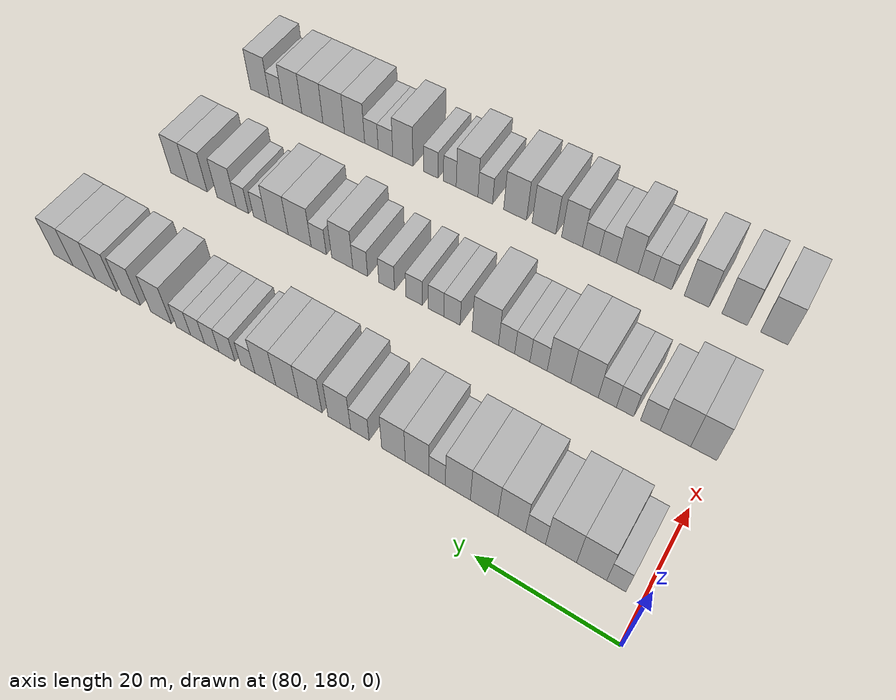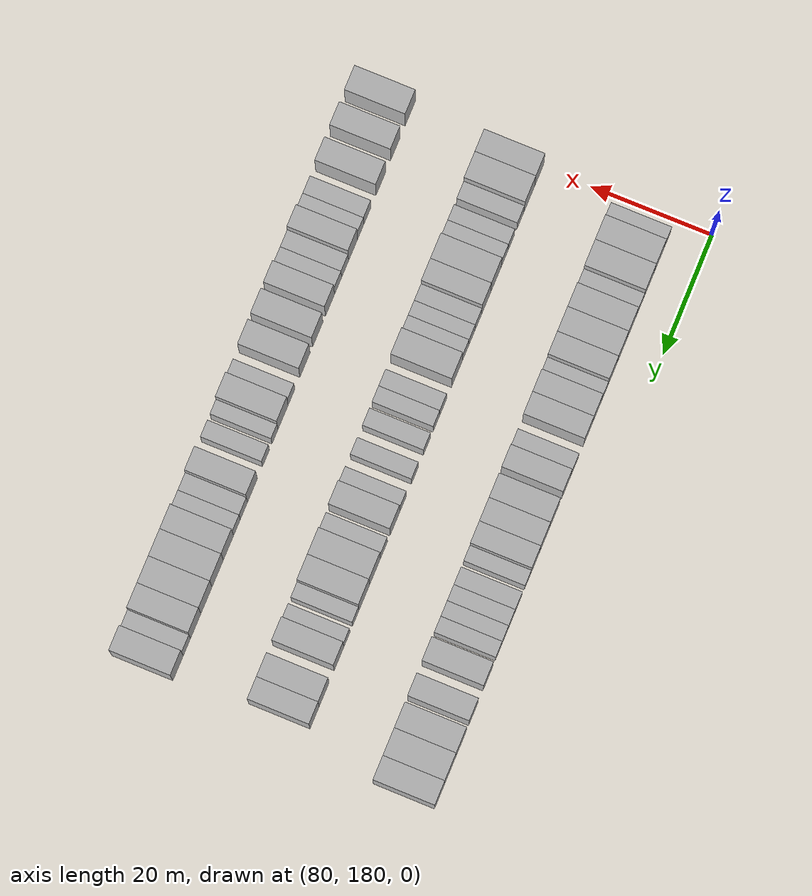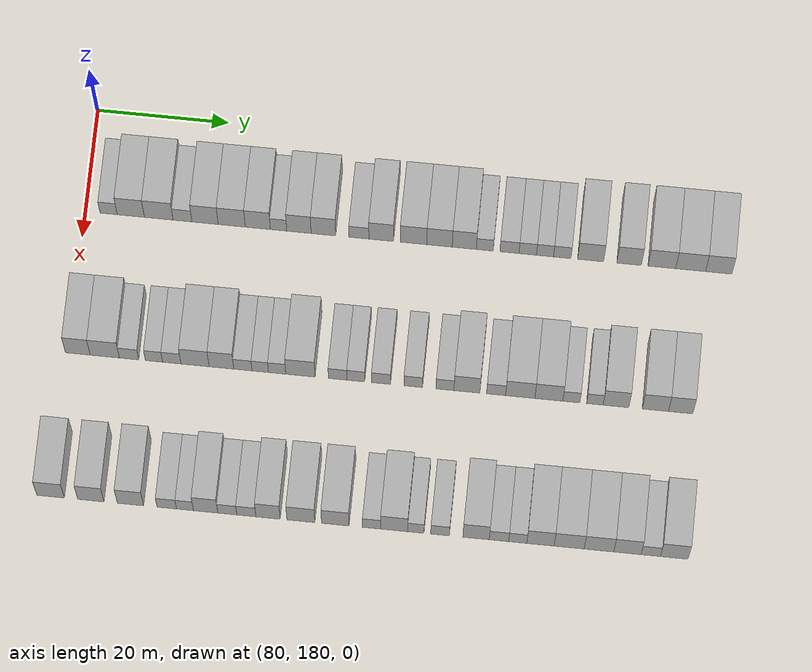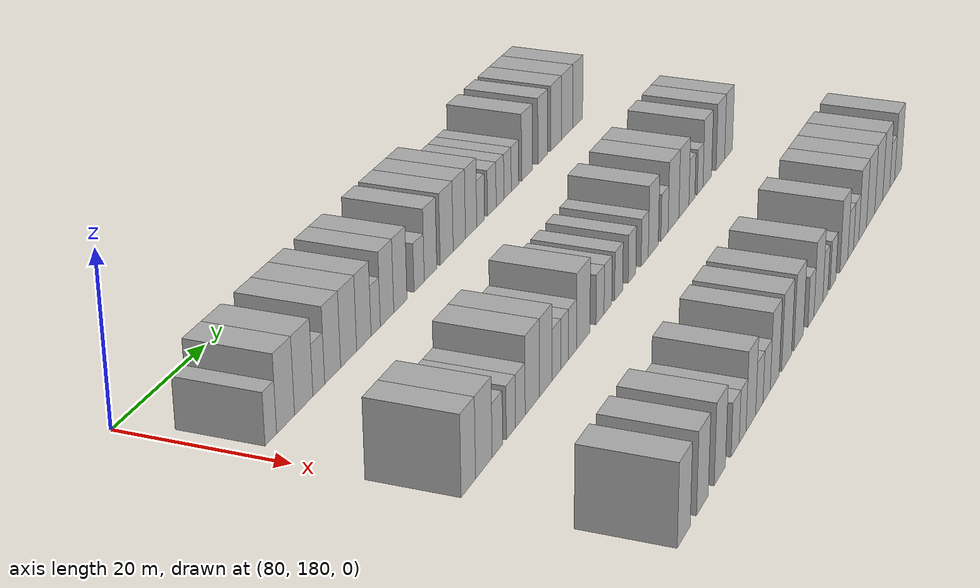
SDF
<sdf version="1.6">
 <world name="default">
  <model name="building_711">
   <static>1</static>
   <pose>91.0000 183.5298 0 0.000000 0.000000 0.000000</pose>
   <link name="link">
    <pose>0 0 3.00 0 0 0</pose>
    <collision name="collision"><geometry><box><size>10.0000 2.5925 6.0000</size></box></geometry></collision>
    <visual name="visual">
     <cast_shadows>0</cast_shadows>
     <geometry><box><size>10.0000 2.5925 6.0000</size></box></geometry>
     <material>
      <script>
       <uri>model://HANNAS_wall/materials/scripts</uri>
       <uri>model://HANNAS_wall/materials/textures</uri>
       <name>vrc/HANNAS_wall</name>
      </script>
     </material>
    </visual>
   </link>
  </model>
  <model name="building_712">
   <static>1</static>
   <pose>91.0000 186.8822 0 0.000000 0.000000 0.000000</pose>
   <link name="link">
    <pose>0 0 4.50 0 0 0</pose>
    <collision name="collision"><geometry><box><size>10.0000 4.1123 9.0000</size></box></geometry></collision>
    <visual name="visual">
     <cast_shadows>0</cast_shadows>
     <geometry><box><size>10.0000 4.1123 9.0000</size></box></geometry>
     <material>
      <script>
       <uri>model://HANNAS_wall/materials/scripts</uri>
       <uri>model://HANNAS_wall/materials/textures</uri>
       <name>vrc/HANNAS_wall</name>
      </script>
     </material>
    </visual>
   </link>
  </model>
  <model name="building_713">
   <static>1</static>
   <pose>91.0000 191.1052 0 0.000000 0.000000 0.000000</pose>
   <link name="link">
    <pose>0 0 4.50 0 0 0</pose>
    <collision name="collision"><geometry><box><size>10.0000 4.3337 9.0000</size></box></geometry></collision>
    <visual name="visual">
     <cast_shadows>0</cast_shadows>
     <geometry><box><size>10.0000 4.3337 9.0000</size></box></geometry>
     <material>
      <script>
       <uri>model://HANNAS_wall/materials/scripts</uri>
       <uri>model://HANNAS_wall/materials/textures</uri>
       <name>vrc/HANNAS_wall</name>
      </script>
     </material>
    </visual>
   </link>
  </model>
  <model name="building_714">
   <static>1</static>
   <pose>91.0000 194.6987 0 0.000000 0.000000 0.000000</pose>
   <link name="link">
    <pose>0 0 3.00 0 0 0</pose>
    <collision name="collision"><geometry><box><size>10.0000 2.8533 6.0000</size></box></geometry></collision>
    <visual name="visual">
     <cast_shadows>0</cast_shadows>
     <geometry><box><size>10.0000 2.8533 6.0000</size></box></geometry>
     <material>
      <script>
       <uri>model://HANNAS_wall/materials/scripts</uri>
       <uri>model://HANNAS_wall/materials/textures</uri>
       <name>vrc/HANNAS_wall</name>
      </script>
     </material>
    </visual>
   </link>
  </model>
  <model name="building_715">
   <static>1</static>
   <pose>91.0000 198.1039 0 0.000000 0.000000 0.000000</pose>
   <link name="link">
    <pose>0 0 4.50 0 0 0</pose>
    <collision name="collision"><geometry><box><size>10.0000 3.9570 9.0000</size></box></geometry></collision>
    <visual name="visual">
     <cast_shadows>0</cast_shadows>
     <geometry><box><size>10.0000 3.9570 9.0000</size></box></geometry>
     <material>
      <script>
       <uri>model://HANNAS_wall/materials/scripts</uri>
       <uri>model://HANNAS_wall/materials/textures</uri>
       <name>vrc/HANNAS_wall</name>
      </script>
     </material>
    </visual>
   </link>
  </model>
  <model name="building_716">
   <static>1</static>
   <pose>91.0000 202.1324 0 0.000000 0.000000 0.000000</pose>
   <link name="link">
    <pose>0 0 4.50 0 0 0</pose>
    <collision name="collision"><geometry><box><size>10.0000 4.1002 9.0000</size></box></geometry></collision>
    <visual name="visual">
     <cast_shadows>0</cast_shadows>
     <geometry><box><size>10.0000 4.1002 9.0000</size></box></geometry>
     <material>
      <script>
       <uri>model://HANNAS_wall/materials/scripts</uri>
       <uri>model://HANNAS_wall/materials/textures</uri>
       <name>vrc/HANNAS_wall</name>
      </script>
     </material>
    </visual>
   </link>
  </model>
  <model name="building_717">
   <static>1</static>
   <pose>91.0000 206.0748 0 0.000000 0.000000 0.000000</pose>
   <link name="link">
    <pose>0 0 4.50 0 0 0</pose>
    <collision name="collision"><geometry><box><size>10.0000 3.7845 9.0000</size></box></geometry></collision>
    <visual name="visual">
     <cast_shadows>0</cast_shadows>
     <geometry><box><size>10.0000 3.7845 9.0000</size></box></geometry>
     <material>
      <script>
       <uri>model://HANNAS_wall/materials/scripts</uri>
       <uri>model://HANNAS_wall/materials/textures</uri>
       <name>vrc/HANNAS_wall</name>
      </script>
     </material>
    </visual>
   </link>
  </model>
  <model name="building_718">
   <static>1</static>
   <pose>91.0000 209.2022 0 0.000000 0.000000 0.000000</pose>
   <link name="link">
    <pose>0 0 3.00 0 0 0</pose>
    <collision name="collision"><geometry><box><size>10.0000 2.4704 6.0000</size></box></geometry></collision>
    <visual name="visual">
     <cast_shadows>0</cast_shadows>
     <geometry><box><size>10.0000 2.4704 6.0000</size></box></geometry>
     <material>
      <script>
       <uri>model://HANNAS_wall/materials/scripts</uri>
       <uri>model://HANNAS_wall/materials/textures</uri>
       <name>vrc/HANNAS_wall</name>
      </script>
     </material>
    </visual>
   </link>
  </model>
  <model name="building_719">
   <static>1</static>
   <pose>91.0000 212.2772 0 0.000000 0.000000 0.000000</pose>
   <link name="link">
    <pose>0 0 4.50 0 0 0</pose>
    <collision name="collision"><geometry><box><size>10.0000 3.6796 9.0000</size></box></geometry></collision>
    <visual name="visual">
     <cast_shadows>0</cast_shadows>
     <geometry><box><size>10.0000 3.6796 9.0000</size></box></geometry>
     <material>
      <script>
       <uri>model://HANNAS_wall/materials/scripts</uri>
       <uri>model://HANNAS_wall/materials/textures</uri>
       <name>vrc/HANNAS_wall</name>
      </script>
     </material>
    </visual>
   </link>
  </model>
  <model name="building_720">
   <static>1</static>
   <pose>91.0000 215.9704 0 0.000000 0.000000 0.000000</pose>
   <link name="link">
    <pose>0 0 4.50 0 0 0</pose>
    <collision name="collision"><geometry><box><size>10.0000 3.7067 9.0000</size></box></geometry></collision>
    <visual name="visual">
     <cast_shadows>0</cast_shadows>
     <geometry><box><size>10.0000 3.7067 9.0000</size></box></geometry>
     <material>
      <script>
       <uri>model://HANNAS_wall/materials/scripts</uri>
       <uri>model://HANNAS_wall/materials/textures</uri>
       <name>vrc/HANNAS_wall</name>
      </script>
     </material>
    </visual>
   </link>
  </model>
  <model name="building_721">
   <static>1</static>
   <pose>91.0000 221.3216 0 0.000000 0.000000 0.000000</pose>
   <link name="link">
    <pose>0 0 3.00 0 0 0</pose>
    <collision name="collision"><geometry><box><size>10.0000 2.9958 6.0000</size></box></geometry></collision>
    <visual name="visual">
     <cast_shadows>0</cast_shadows>
     <geometry><box><size>10.0000 2.9958 6.0000</size></box></geometry>
     <material>
      <script>
       <uri>model://HANNAS_wall/materials/scripts</uri>
       <uri>model://HANNAS_wall/materials/textures</uri>
       <name>vrc/HANNAS_wall</name>
      </script>
     </material>
    </visual>
   </link>
  </model>
  <model name="building_722">
   <static>1</static>
   <pose>91.0000 224.6777 0 0.000000 0.000000 0.000000</pose>
   <link name="link">
    <pose>0 0 4.50 0 0 0</pose>
    <collision name="collision"><geometry><box><size>10.0000 3.7164 9.0000</size></box></geometry></collision>
    <visual name="visual">
     <cast_shadows>0</cast_shadows>
     <geometry><box><size>10.0000 3.7164 9.0000</size></box></geometry>
     <material>
      <script>
       <uri>model://HANNAS_wall/materials/scripts</uri>
       <uri>model://HANNAS_wall/materials/textures</uri>
       <name>vrc/HANNAS_wall</name>
      </script>
     </material>
    </visual>
   </link>
  </model>
  <model name="building_723">
   <static>1</static>
   <pose>91.0000 229.5359 0 0.000000 0.000000 0.000000</pose>
   <link name="link">
    <pose>0 0 4.50 0 0 0</pose>
    <collision name="collision"><geometry><box><size>10.0000 4.0000 9.0000</size></box></geometry></collision>
    <visual name="visual">
     <cast_shadows>0</cast_shadows>
     <geometry><box><size>10.0000 4.0000 9.0000</size></box></geometry>
     <material>
      <script>
       <uri>model://HANNAS_wall/materials/scripts</uri>
       <uri>model://HANNAS_wall/materials/textures</uri>
       <name>vrc/HANNAS_wall</name>
      </script>
     </material>
    </visual>
   </link>
  </model>
  <model name="building_724">
   <static>1</static>
   <pose>91.0000 233.4628 0 0.000000 0.000000 0.000000</pose>
   <link name="link">
    <pose>0 0 4.50 0 0 0</pose>
    <collision name="collision"><geometry><box><size>10.0000 3.8537 9.0000</size></box></geometry></collision>
    <visual name="visual">
     <cast_shadows>0</cast_shadows>
     <geometry><box><size>10.0000 3.8537 9.0000</size></box></geometry>
     <material>
      <script>
       <uri>model://HANNAS_wall/materials/scripts</uri>
       <uri>model://HANNAS_wall/materials/textures</uri>
       <name>vrc/HANNAS_wall</name>
      </script>
     </material>
    </visual>
   </link>
  </model>
  <model name="building_725">
   <static>1</static>
   <pose>91.0000 237.2054 0 0.000000 0.000000 0.000000</pose>
   <link name="link">
    <pose>0 0 4.50 0 0 0</pose>
    <collision name="collision"><geometry><box><size>10.0000 3.6313 9.0000</size></box></geometry></collision>
    <visual name="visual">
     <cast_shadows>0</cast_shadows>
     <geometry><box><size>10.0000 3.6313 9.0000</size></box></geometry>
     <material>
      <script>
       <uri>model://HANNAS_wall/materials/scripts</uri>
       <uri>model://HANNAS_wall/materials/textures</uri>
       <name>vrc/HANNAS_wall</name>
      </script>
     </material>
    </visual>
   </link>
  </model>
  <model name="building_726">
   <static>1</static>
   <pose>91.0000 240.2907 0 0.000000 0.000000 0.000000</pose>
   <link name="link">
    <pose>0 0 3.00 0 0 0</pose>
    <collision name="collision"><geometry><box><size>10.0000 2.5394 6.0000</size></box></geometry></collision>
    <visual name="visual">
     <cast_shadows>0</cast_shadows>
     <geometry><box><size>10.0000 2.5394 6.0000</size></box></geometry>
     <material>
      <script>
       <uri>model://HANNAS_wall/materials/scripts</uri>
       <uri>model://HANNAS_wall/materials/textures</uri>
       <name>vrc/HANNAS_wall</name>
      </script>
     </material>
    </visual>
   </link>
  </model>
  <model name="building_727">
   <static>1</static>
   <pose>91.0000 244.0029 0 0.000000 0.000000 0.000000</pose>
   <link name="link">
    <pose>0 0 3.00 0 0 0</pose>
    <collision name="collision"><geometry><box><size>10.0000 2.8849 6.0000</size></box></geometry></collision>
    <visual name="visual">
     <cast_shadows>0</cast_shadows>
     <geometry><box><size>10.0000 2.8849 6.0000</size></box></geometry>
     <material>
      <script>
       <uri>model://HANNAS_wall/materials/scripts</uri>
       <uri>model://HANNAS_wall/materials/textures</uri>
       <name>vrc/HANNAS_wall</name>
      </script>
     </material>
    </visual>
   </link>
  </model>
  <model name="building_728">
   <static>1</static>
   <pose>91.0000 246.7634 0 0.000000 0.000000 0.000000</pose>
   <link name="link">
    <pose>0 0 3.00 0 0 0</pose>
    <collision name="collision"><geometry><box><size>10.0000 2.6361 6.0000</size></box></geometry></collision>
    <visual name="visual">
     <cast_shadows>0</cast_shadows>
     <geometry><box><size>10.0000 2.6361 6.0000</size></box></geometry>
     <material>
      <script>
       <uri>model://HANNAS_wall/materials/scripts</uri>
       <uri>model://HANNAS_wall/materials/textures</uri>
       <name>vrc/HANNAS_wall</name>
      </script>
     </material>
    </visual>
   </link>
  </model>
  <model name="building_729">
   <static>1</static>
   <pose>91.0000 249.3591 0 0.000000 0.000000 0.000000</pose>
   <link name="link">
    <pose>0 0 3.00 0 0 0</pose>
    <collision name="collision"><geometry><box><size>10.0000 2.5554 6.0000</size></box></geometry></collision>
    <visual name="visual">
     <cast_shadows>0</cast_shadows>
     <geometry><box><size>10.0000 2.5554 6.0000</size></box></geometry>
     <material>
      <script>
       <uri>model://HANNAS_wall/materials/scripts</uri>
       <uri>model://HANNAS_wall/materials/textures</uri>
       <name>vrc/HANNAS_wall</name>
      </script>
     </material>
    </visual>
   </link>
  </model>
  <model name="building_730">
   <static>1</static>
   <pose>91.0000 251.9491 0 0.000000 0.000000 0.000000</pose>
   <link name="link">
    <pose>0 0 3.00 0 0 0</pose>
    <collision name="collision"><geometry><box><size>10.0000 2.6244 6.0000</size></box></geometry></collision>
    <visual name="visual">
     <cast_shadows>0</cast_shadows>
     <geometry><box><size>10.0000 2.6244 6.0000</size></box></geometry>
     <material>
      <script>
       <uri>model://HANNAS_wall/materials/scripts</uri>
       <uri>model://HANNAS_wall/materials/textures</uri>
       <name>vrc/HANNAS_wall</name>
      </script>
     </material>
    </visual>
   </link>
  </model>
  <model name="building_731">
   <static>1</static>
   <pose>91.0000 256.2116 0 0.000000 0.000000 0.000000</pose>
   <link name="link">
    <pose>0 0 4.50 0 0 0</pose>
    <collision name="collision"><geometry><box><size>10.0000 3.9006 9.0000</size></box></geometry></collision>
    <visual name="visual">
     <cast_shadows>0</cast_shadows>
     <geometry><box><size>10.0000 3.9006 9.0000</size></box></geometry>
     <material>
      <script>
       <uri>model://HANNAS_wall/materials/scripts</uri>
       <uri>model://HANNAS_wall/materials/textures</uri>
       <name>vrc/HANNAS_wall</name>
      </script>
     </material>
    </visual>
   </link>
  </model>
  <model name="building_732">
   <static>1</static>
   <pose>91.0000 262.0082 0 0.000000 0.000000 0.000000</pose>
   <link name="link">
    <pose>0 0 4.50 0 0 0</pose>
    <collision name="collision"><geometry><box><size>10.0000 3.6928 9.0000</size></box></geometry></collision>
    <visual name="visual">
     <cast_shadows>0</cast_shadows>
     <geometry><box><size>10.0000 3.6928 9.0000</size></box></geometry>
     <material>
      <script>
       <uri>model://HANNAS_wall/materials/scripts</uri>
       <uri>model://HANNAS_wall/materials/textures</uri>
       <name>vrc/HANNAS_wall</name>
      </script>
     </material>
    </visual>
   </link>
  </model>
  <model name="building_733">
   <static>1</static>
   <pose>91.0000 266.9422 0 0.000000 0.000000 0.000000</pose>
   <link name="link">
    <pose>0 0 4.50 0 0 0</pose>
    <collision name="collision"><geometry><box><size>10.0000 4.1752 9.0000</size></box></geometry></collision>
    <visual name="visual">
     <cast_shadows>0</cast_shadows>
     <geometry><box><size>10.0000 4.1752 9.0000</size></box></geometry>
     <material>
      <script>
       <uri>model://HANNAS_wall/materials/scripts</uri>
       <uri>model://HANNAS_wall/materials/textures</uri>
       <name>vrc/HANNAS_wall</name>
      </script>
     </material>
    </visual>
   </link>
  </model>
  <model name="building_734">
   <static>1</static>
   <pose>91.0000 271.2682 0 0.000000 0.000000 0.000000</pose>
   <link name="link">
    <pose>0 0 4.50 0 0 0</pose>
    <collision name="collision"><geometry><box><size>10.0000 4.4767 9.0000</size></box></geometry></collision>
    <visual name="visual">
     <cast_shadows>0</cast_shadows>
     <geometry><box><size>10.0000 4.4767 9.0000</size></box></geometry>
     <material>
      <script>
       <uri>model://HANNAS_wall/materials/scripts</uri>
       <uri>model://HANNAS_wall/materials/textures</uri>
       <name>vrc/HANNAS_wall</name>
      </script>
     </material>
    </visual>
   </link>
  </model>
  <model name="building_735">
   <static>1</static>
   <pose>91.0000 275.4842 0 0.000000 0.000000 0.000000</pose>
   <link name="link">
    <pose>0 0 4.50 0 0 0</pose>
    <collision name="collision"><geometry><box><size>10.0000 3.9554 9.0000</size></box></geometry></collision>
    <visual name="visual">
     <cast_shadows>0</cast_shadows>
     <geometry><box><size>10.0000 3.9554 9.0000</size></box></geometry>
     <material>
      <script>
       <uri>model://HANNAS_wall/materials/scripts</uri>
       <uri>model://HANNAS_wall/materials/textures</uri>
       <name>vrc/HANNAS_wall</name>
      </script>
     </material>
    </visual>
   </link>
  </model>
  <model name="building_886">
   <static>1</static>
   <pose>113.0000 181.4608 0 0.000000 0.000000 0.000000</pose>
   <link name="link">
    <pose>0 0 4.50 0 0 0</pose>
    <collision name="collision"><geometry><box><size>10.0000 3.7201 9.0000</size></box></geometry></collision>
    <visual name="visual">
     <cast_shadows>0</cast_shadows>
     <geometry><box><size>10.0000 3.7201 9.0000</size></box></geometry>
     <material>
      <script>
       <uri>model://HANNAS_wall/materials/scripts</uri>
       <uri>model://HANNAS_wall/materials/textures</uri>
       <name>vrc/HANNAS_wall</name>
      </script>
     </material>
    </visual>
   </link>
  </model>
  <model name="building_887">
   <static>1</static>
   <pose>113.0000 185.5101 0 0.000000 0.000000 0.000000</pose>
   <link name="link">
    <pose>0 0 4.50 0 0 0</pose>
    <collision name="collision"><geometry><box><size>10.0000 4.3786 9.0000</size></box></geometry></collision>
    <visual name="visual">
     <cast_shadows>0</cast_shadows>
     <geometry><box><size>10.0000 4.3786 9.0000</size></box></geometry>
     <material>
      <script>
       <uri>model://HANNAS_wall/materials/scripts</uri>
       <uri>model://HANNAS_wall/materials/textures</uri>
       <name>vrc/HANNAS_wall</name>
      </script>
     </material>
    </visual>
   </link>
  </model>
  <model name="building_888">
   <static>1</static>
   <pose>113.0000 189.1455 0 0.000000 0.000000 0.000000</pose>
   <link name="link">
    <pose>0 0 3.00 0 0 0</pose>
    <collision name="collision"><geometry><box><size>10.0000 2.8922 6.0000</size></box></geometry></collision>
    <visual name="visual">
     <cast_shadows>0</cast_shadows>
     <geometry><box><size>10.0000 2.8922 6.0000</size></box></geometry>
     <material>
      <script>
       <uri>model://HANNAS_wall/materials/scripts</uri>
       <uri>model://HANNAS_wall/materials/textures</uri>
       <name>vrc/HANNAS_wall</name>
      </script>
     </material>
    </visual>
   </link>
  </model>
  <model name="building_889">
   <static>1</static>
   <pose>113.0000 192.8807 0 0.000000 0.000000 0.000000</pose>
   <link name="link">
    <pose>0 0 3.00 0 0 0</pose>
    <collision name="collision"><geometry><box><size>10.0000 2.5783 6.0000</size></box></geometry></collision>
    <visual name="visual">
     <cast_shadows>0</cast_shadows>
     <geometry><box><size>10.0000 2.5783 6.0000</size></box></geometry>
     <material>
      <script>
       <uri>model://HANNAS_wall/materials/scripts</uri>
       <uri>model://HANNAS_wall/materials/textures</uri>
       <name>vrc/HANNAS_wall</name>
      </script>
     </material>
    </visual>
   </link>
  </model>
  <model name="building_890">
   <static>1</static>
   <pose>113.0000 195.5506 0 0.000000 0.000000 0.000000</pose>
   <link name="link">
    <pose>0 0 3.00 0 0 0</pose>
    <collision name="collision"><geometry><box><size>10.0000 2.7614 6.0000</size></box></geometry></collision>
    <visual name="visual">
     <cast_shadows>0</cast_shadows>
     <geometry><box><size>10.0000 2.7614 6.0000</size></box></geometry>
     <material>
      <script>
       <uri>model://HANNAS_wall/materials/scripts</uri>
       <uri>model://HANNAS_wall/materials/textures</uri>
       <name>vrc/HANNAS_wall</name>
      </script>
     </material>
    </visual>
   </link>
  </model>
  <model name="building_891">
   <static>1</static>
   <pose>113.0000 199.0379 0 0.000000 0.000000 0.000000</pose>
   <link name="link">
    <pose>0 0 4.50 0 0 0</pose>
    <collision name="collision"><geometry><box><size>10.0000 4.2131 9.0000</size></box></geometry></collision>
    <visual name="visual">
     <cast_shadows>0</cast_shadows>
     <geometry><box><size>10.0000 4.2131 9.0000</size></box></geometry>
     <material>
      <script>
       <uri>model://HANNAS_wall/materials/scripts</uri>
       <uri>model://HANNAS_wall/materials/textures</uri>
       <name>vrc/HANNAS_wall</name>
      </script>
     </material>
    </visual>
   </link>
  </model>
  <model name="building_892">
   <static>1</static>
   <pose>113.0000 202.9891 0 0.000000 0.000000 0.000000</pose>
   <link name="link">
    <pose>0 0 4.50 0 0 0</pose>
    <collision name="collision"><geometry><box><size>10.0000 3.6895 9.0000</size></box></geometry></collision>
    <visual name="visual">
     <cast_shadows>0</cast_shadows>
     <geometry><box><size>10.0000 3.6895 9.0000</size></box></geometry>
     <material>
      <script>
       <uri>model://HANNAS_wall/materials/scripts</uri>
       <uri>model://HANNAS_wall/materials/textures</uri>
       <name>vrc/HANNAS_wall</name>
      </script>
     </material>
    </visual>
   </link>
  </model>
  <model name="building_893">
   <static>1</static>
   <pose>113.0000 206.2037 0 0.000000 0.000000 0.000000</pose>
   <link name="link">
    <pose>0 0 3.00 0 0 0</pose>
    <collision name="collision"><geometry><box><size>10.0000 2.7397 6.0000</size></box></geometry></collision>
    <visual name="visual">
     <cast_shadows>0</cast_shadows>
     <geometry><box><size>10.0000 2.7397 6.0000</size></box></geometry>
     <material>
      <script>
       <uri>model://HANNAS_wall/materials/scripts</uri>
       <uri>model://HANNAS_wall/materials/textures</uri>
       <name>vrc/HANNAS_wall</name>
      </script>
     </material>
    </visual>
   </link>
  </model>
  <model name="building_894">
   <static>1</static>
   <pose>113.0000 208.7994 0 0.000000 0.000000 0.000000</pose>
   <link name="link">
    <pose>0 0 3.00 0 0 0</pose>
    <collision name="collision"><geometry><box><size>10.0000 2.4516 6.0000</size></box></geometry></collision>
    <visual name="visual">
     <cast_shadows>0</cast_shadows>
     <geometry><box><size>10.0000 2.4516 6.0000</size></box></geometry>
     <material>
      <script>
       <uri>model://HANNAS_wall/materials/scripts</uri>
       <uri>model://HANNAS_wall/materials/textures</uri>
       <name>vrc/HANNAS_wall</name>
      </script>
     </material>
    </visual>
   </link>
  </model>
  <model name="building_895">
   <static>1</static>
   <pose>113.0000 211.3282 0 0.000000 0.000000 0.000000</pose>
   <link name="link">
    <pose>0 0 3.00 0 0 0</pose>
    <collision name="collision"><geometry><box><size>10.0000 2.6061 6.0000</size></box></geometry></collision>
    <visual name="visual">
     <cast_shadows>0</cast_shadows>
     <geometry><box><size>10.0000 2.6061 6.0000</size></box></geometry>
     <material>
      <script>
       <uri>model://HANNAS_wall/materials/scripts</uri>
       <uri>model://HANNAS_wall/materials/textures</uri>
       <name>vrc/HANNAS_wall</name>
      </script>
     </material>
    </visual>
   </link>
  </model>
  <model name="building_896">
   <static>1</static>
   <pose>113.0000 214.8181 0 0.000000 0.000000 0.000000</pose>
   <link name="link">
    <pose>0 0 4.50 0 0 0</pose>
    <collision name="collision"><geometry><box><size>10.0000 4.3737 9.0000</size></box></geometry></collision>
    <visual name="visual">
     <cast_shadows>0</cast_shadows>
     <geometry><box><size>10.0000 4.3737 9.0000</size></box></geometry>
     <material>
      <script>
       <uri>model://HANNAS_wall/materials/scripts</uri>
       <uri>model://HANNAS_wall/materials/textures</uri>
       <name>vrc/HANNAS_wall</name>
      </script>
     </material>
    </visual>
   </link>
  </model>
  <model name="building_897">
   <static>1</static>
   <pose>113.0000 220.3850 0 0.000000 0.000000 0.000000</pose>
   <link name="link">
    <pose>0 0 3.00 0 0 0</pose>
    <collision name="collision"><geometry><box><size>10.0000 2.7602 6.0000</size></box></geometry></collision>
    <visual name="visual">
     <cast_shadows>0</cast_shadows>
     <geometry><box><size>10.0000 2.7602 6.0000</size></box></geometry>
     <material>
      <script>
       <uri>model://HANNAS_wall/materials/scripts</uri>
       <uri>model://HANNAS_wall/materials/textures</uri>
       <name>vrc/HANNAS_wall</name>
      </script>
     </material>
    </visual>
   </link>
  </model>
  <model name="building_898">
   <static>1</static>
   <pose>113.0000 223.0998 0 0.000000 0.000000 0.000000</pose>
   <link name="link">
    <pose>0 0 3.00 0 0 0</pose>
    <collision name="collision"><geometry><box><size>10.0000 2.6694 6.0000</size></box></geometry></collision>
    <visual name="visual">
     <cast_shadows>0</cast_shadows>
     <geometry><box><size>10.0000 2.6694 6.0000</size></box></geometry>
     <material>
      <script>
       <uri>model://HANNAS_wall/materials/scripts</uri>
       <uri>model://HANNAS_wall/materials/textures</uri>
       <name>vrc/HANNAS_wall</name>
      </script>
     </material>
    </visual>
   </link>
  </model>
  <model name="building_899">
   <static>1</static>
   <pose>113.0000 226.8596 0 0.000000 0.000000 0.000000</pose>
   <link name="link">
    <pose>0 0 3.00 0 0 0</pose>
    <collision name="collision"><geometry><box><size>10.0000 2.8503 6.0000</size></box></geometry></collision>
    <visual name="visual">
     <cast_shadows>0</cast_shadows>
     <geometry><box><size>10.0000 2.8503 6.0000</size></box></geometry>
     <material>
      <script>
       <uri>model://HANNAS_wall/materials/scripts</uri>
       <uri>model://HANNAS_wall/materials/textures</uri>
       <name>vrc/HANNAS_wall</name>
      </script>
     </material>
    </visual>
   </link>
  </model>
  <model name="building_900">
   <static>1</static>
   <pose>113.0000 231.6807 0 0.000000 0.000000 0.000000</pose>
   <link name="link">
    <pose>0 0 3.00 0 0 0</pose>
    <collision name="collision"><geometry><box><size>10.0000 2.7917 6.0000</size></box></geometry></collision>
    <visual name="visual">
     <cast_shadows>0</cast_shadows>
     <geometry><box><size>10.0000 2.7917 6.0000</size></box></geometry>
     <material>
      <script>
       <uri>model://HANNAS_wall/materials/scripts</uri>
       <uri>model://HANNAS_wall/materials/textures</uri>
       <name>vrc/HANNAS_wall</name>
      </script>
     </material>
    </visual>
   </link>
  </model>
  <model name="building_901">
   <static>1</static>
   <pose>113.0000 236.4230 0 0.000000 0.000000 0.000000</pose>
   <link name="link">
    <pose>0 0 3.00 0 0 0</pose>
    <collision name="collision"><geometry><box><size>10.0000 2.6930 6.0000</size></box></geometry></collision>
    <visual name="visual">
     <cast_shadows>0</cast_shadows>
     <geometry><box><size>10.0000 2.6930 6.0000</size></box></geometry>
     <material>
      <script>
       <uri>model://HANNAS_wall/materials/scripts</uri>
       <uri>model://HANNAS_wall/materials/textures</uri>
       <name>vrc/HANNAS_wall</name>
      </script>
     </material>
    </visual>
   </link>
  </model>
  <model name="building_902">
   <static>1</static>
   <pose>113.0000 239.7086 0 0.000000 0.000000 0.000000</pose>
   <link name="link">
    <pose>0 0 4.50 0 0 0</pose>
    <collision name="collision"><geometry><box><size>10.0000 3.8782 9.0000</size></box></geometry></collision>
    <visual name="visual">
     <cast_shadows>0</cast_shadows>
     <geometry><box><size>10.0000 3.8782 9.0000</size></box></geometry>
     <material>
      <script>
       <uri>model://HANNAS_wall/materials/scripts</uri>
       <uri>model://HANNAS_wall/materials/textures</uri>
       <name>vrc/HANNAS_wall</name>
      </script>
     </material>
    </visual>
   </link>
  </model>
  <model name="building_903">
   <static>1</static>
   <pose>113.0000 244.0668 0 0.000000 0.000000 0.000000</pose>
   <link name="link">
    <pose>0 0 3.00 0 0 0</pose>
    <collision name="collision"><geometry><box><size>10.0000 2.8384 6.0000</size></box></geometry></collision>
    <visual name="visual">
     <cast_shadows>0</cast_shadows>
     <geometry><box><size>10.0000 2.8384 6.0000</size></box></geometry>
     <material>
      <script>
       <uri>model://HANNAS_wall/materials/scripts</uri>
       <uri>model://HANNAS_wall/materials/textures</uri>
       <name>vrc/HANNAS_wall</name>
      </script>
     </material>
    </visual>
   </link>
  </model>
  <model name="building_904">
   <static>1</static>
   <pose>113.0000 247.6709 0 0.000000 0.000000 0.000000</pose>
   <link name="link">
    <pose>0 0 4.50 0 0 0</pose>
    <collision name="collision"><geometry><box><size>10.0000 4.3696 9.0000</size></box></geometry></collision>
    <visual name="visual">
     <cast_shadows>0</cast_shadows>
     <geometry><box><size>10.0000 4.3696 9.0000</size></box></geometry>
     <material>
      <script>
       <uri>model://HANNAS_wall/materials/scripts</uri>
       <uri>model://HANNAS_wall/materials/textures</uri>
       <name>vrc/HANNAS_wall</name>
      </script>
     </material>
    </visual>
   </link>
  </model>
  <model name="building_905">
   <static>1</static>
   <pose>113.0000 251.9469 0 0.000000 0.000000 0.000000</pose>
   <link name="link">
    <pose>0 0 4.50 0 0 0</pose>
    <collision name="collision"><geometry><box><size>10.0000 4.1824 9.0000</size></box></geometry></collision>
    <visual name="visual">
     <cast_shadows>0</cast_shadows>
     <geometry><box><size>10.0000 4.1824 9.0000</size></box></geometry>
     <material>
      <script>
       <uri>model://HANNAS_wall/materials/scripts</uri>
       <uri>model://HANNAS_wall/materials/textures</uri>
       <name>vrc/HANNAS_wall</name>
      </script>
     </material>
    </visual>
   </link>
  </model>
  <model name="building_906">
   <static>1</static>
   <pose>113.0000 255.3095 0 0.000000 0.000000 0.000000</pose>
   <link name="link">
    <pose>0 0 3.00 0 0 0</pose>
    <collision name="collision"><geometry><box><size>10.0000 2.5429 6.0000</size></box></geometry></collision>
    <visual name="visual">
     <cast_shadows>0</cast_shadows>
     <geometry><box><size>10.0000 2.5429 6.0000</size></box></geometry>
     <material>
      <script>
       <uri>model://HANNAS_wall/materials/scripts</uri>
       <uri>model://HANNAS_wall/materials/textures</uri>
       <name>vrc/HANNAS_wall</name>
      </script>
     </material>
    </visual>
   </link>
  </model>
  <model name="building_907">
   <static>1</static>
   <pose>113.0000 258.8143 0 0.000000 0.000000 0.000000</pose>
   <link name="link">
    <pose>0 0 3.00 0 0 0</pose>
    <collision name="collision"><geometry><box><size>10.0000 2.4666 6.0000</size></box></geometry></collision>
    <visual name="visual">
     <cast_shadows>0</cast_shadows>
     <geometry><box><size>10.0000 2.4666 6.0000</size></box></geometry>
     <material>
      <script>
       <uri>model://HANNAS_wall/materials/scripts</uri>
       <uri>model://HANNAS_wall/materials/textures</uri>
       <name>vrc/HANNAS_wall</name>
      </script>
     </material>
    </visual>
   </link>
  </model>
  <model name="building_908">
   <static>1</static>
   <pose>113.0000 261.9673 0 0.000000 0.000000 0.000000</pose>
   <link name="link">
    <pose>0 0 4.50 0 0 0</pose>
    <collision name="collision"><geometry><box><size>10.0000 3.8395 9.0000</size></box></geometry></collision>
    <visual name="visual">
     <cast_shadows>0</cast_shadows>
     <geometry><box><size>10.0000 3.8395 9.0000</size></box></geometry>
     <material>
      <script>
       <uri>model://HANNAS_wall/materials/scripts</uri>
       <uri>model://HANNAS_wall/materials/textures</uri>
       <name>vrc/HANNAS_wall</name>
      </script>
     </material>
    </visual>
   </link>
  </model>
  <model name="building_909">
   <static>1</static>
   <pose>113.0000 267.8396 0 0.000000 0.000000 0.000000</pose>
   <link name="link">
    <pose>0 0 4.50 0 0 0</pose>
    <collision name="collision"><geometry><box><size>10.0000 3.9050 9.0000</size></box></geometry></collision>
    <visual name="visual">
     <cast_shadows>0</cast_shadows>
     <geometry><box><size>10.0000 3.9050 9.0000</size></box></geometry>
     <material>
      <script>
       <uri>model://HANNAS_wall/materials/scripts</uri>
       <uri>model://HANNAS_wall/materials/textures</uri>
       <name>vrc/HANNAS_wall</name>
      </script>
     </material>
    </visual>
   </link>
  </model>
  <model name="building_910">
   <static>1</static>
   <pose>113.0000 271.6097 0 0.000000 0.000000 0.000000</pose>
   <link name="link">
    <pose>0 0 4.50 0 0 0</pose>
    <collision name="collision"><geometry><box><size>10.0000 3.6352 9.0000</size></box></geometry></collision>
    <visual name="visual">
     <cast_shadows>0</cast_shadows>
     <geometry><box><size>10.0000 3.6352 9.0000</size></box></geometry>
     <material>
      <script>
       <uri>model://HANNAS_wall/materials/scripts</uri>
       <uri>model://HANNAS_wall/materials/textures</uri>
       <name>vrc/HANNAS_wall</name>
      </script>
     </material>
    </visual>
   </link>
  </model>
  <model name="building_1069">
   <static>1</static>
   <pose>135.0000 179.9943 0 0.000000 0.000000 0.000000</pose>
   <link name="link">
    <pose>0 0 4.50 0 0 0</pose>
    <collision name="collision"><geometry><box><size>10.0000 4.0931 9.0000</size></box></geometry></collision>
    <visual name="visual">
     <cast_shadows>0</cast_shadows>
     <geometry><box><size>10.0000 4.0931 9.0000</size></box></geometry>
     <material>
      <script>
       <uri>model://HANNAS_wall/materials/scripts</uri>
       <uri>model://HANNAS_wall/materials/textures</uri>
       <name>vrc/HANNAS_wall</name>
      </script>
     </material>
    </visual>
   </link>
  </model>
  <model name="building_1070">
   <static>1</static>
   <pose>135.0000 185.9889 0 0.000000 0.000000 0.000000</pose>
   <link name="link">
    <pose>0 0 4.50 0 0 0</pose>
    <collision name="collision"><geometry><box><size>10.0000 3.8960 9.0000</size></box></geometry></collision>
    <visual name="visual">
     <cast_shadows>0</cast_shadows>
     <geometry><box><size>10.0000 3.8960 9.0000</size></box></geometry>
     <material>
      <script>
       <uri>model://HANNAS_wall/materials/scripts</uri>
       <uri>model://HANNAS_wall/materials/textures</uri>
       <name>vrc/HANNAS_wall</name>
      </script>
     </material>
    </visual>
   </link>
  </model>
  <model name="building_1071">
   <static>1</static>
   <pose>135.0000 191.8845 0 0.000000 0.000000 0.000000</pose>
   <link name="link">
    <pose>0 0 4.50 0 0 0</pose>
    <collision name="collision"><geometry><box><size>10.0000 3.8952 9.0000</size></box></geometry></collision>
    <visual name="visual">
     <cast_shadows>0</cast_shadows>
     <geometry><box><size>10.0000 3.8952 9.0000</size></box></geometry>
     <material>
      <script>
       <uri>model://HANNAS_wall/materials/scripts</uri>
       <uri>model://HANNAS_wall/materials/textures</uri>
       <name>vrc/HANNAS_wall</name>
      </script>
     </material>
    </visual>
   </link>
  </model>
  <model name="building_1072">
   <static>1</static>
   <pose>135.0000 197.2833 0 0.000000 0.000000 0.000000</pose>
   <link name="link">
    <pose>0 0 3.00 0 0 0</pose>
    <collision name="collision"><geometry><box><size>10.0000 2.9025 6.0000</size></box></geometry></collision>
    <visual name="visual">
     <cast_shadows>0</cast_shadows>
     <geometry><box><size>10.0000 2.9025 6.0000</size></box></geometry>
     <material>
      <script>
       <uri>model://HANNAS_wall/materials/scripts</uri>
       <uri>model://HANNAS_wall/materials/textures</uri>
       <name>vrc/HANNAS_wall</name>
      </script>
     </material>
    </visual>
   </link>
  </model>
  <model name="building_1073">
   <static>1</static>
   <pose>135.0000 199.9871 0 0.000000 0.000000 0.000000</pose>
   <link name="link">
    <pose>0 0 3.00 0 0 0</pose>
    <collision name="collision"><geometry><box><size>10.0000 2.5050 6.0000</size></box></geometry></collision>
    <visual name="visual">
     <cast_shadows>0</cast_shadows>
     <geometry><box><size>10.0000 2.5050 6.0000</size></box></geometry>
     <material>
      <script>
       <uri>model://HANNAS_wall/materials/scripts</uri>
       <uri>model://HANNAS_wall/materials/textures</uri>
       <name>vrc/HANNAS_wall</name>
      </script>
     </material>
    </visual>
   </link>
  </model>
  <model name="building_1074">
   <static>1</static>
   <pose>135.0000 203.0524 0 0.000000 0.000000 0.000000</pose>
   <link name="link">
    <pose>0 0 4.50 0 0 0</pose>
    <collision name="collision"><geometry><box><size>10.0000 3.6256 9.0000</size></box></geometry></collision>
    <visual name="visual">
     <cast_shadows>0</cast_shadows>
     <geometry><box><size>10.0000 3.6256 9.0000</size></box></geometry>
     <material>
      <script>
       <uri>model://HANNAS_wall/materials/scripts</uri>
       <uri>model://HANNAS_wall/materials/textures</uri>
       <name>vrc/HANNAS_wall</name>
      </script>
     </material>
    </visual>
   </link>
  </model>
  <model name="building_1075">
   <static>1</static>
   <pose>135.0000 206.2761 0 0.000000 0.000000 0.000000</pose>
   <link name="link">
    <pose>0 0 3.00 0 0 0</pose>
    <collision name="collision"><geometry><box><size>10.0000 2.8218 6.0000</size></box></geometry></collision>
    <visual name="visual">
     <cast_shadows>0</cast_shadows>
     <geometry><box><size>10.0000 2.8218 6.0000</size></box></geometry>
     <material>
      <script>
       <uri>model://HANNAS_wall/materials/scripts</uri>
       <uri>model://HANNAS_wall/materials/textures</uri>
       <name>vrc/HANNAS_wall</name>
      </script>
     </material>
    </visual>
   </link>
  </model>
  <model name="building_1076">
   <static>1</static>
   <pose>135.0000 209.1060 0 0.000000 0.000000 0.000000</pose>
   <link name="link">
    <pose>0 0 3.00 0 0 0</pose>
    <collision name="collision"><geometry><box><size>10.0000 2.8380 6.0000</size></box></geometry></collision>
    <visual name="visual">
     <cast_shadows>0</cast_shadows>
     <geometry><box><size>10.0000 2.8380 6.0000</size></box></geometry>
     <material>
      <script>
       <uri>model://HANNAS_wall/materials/scripts</uri>
       <uri>model://HANNAS_wall/materials/textures</uri>
       <name>vrc/HANNAS_wall</name>
      </script>
     </material>
    </visual>
   </link>
  </model>
  <model name="building_1077">
   <static>1</static>
   <pose>135.0000 212.3283 0 0.000000 0.000000 0.000000</pose>
   <link name="link">
    <pose>0 0 4.50 0 0 0</pose>
    <collision name="collision"><geometry><box><size>10.0000 3.6067 9.0000</size></box></geometry></collision>
    <visual name="visual">
     <cast_shadows>0</cast_shadows>
     <geometry><box><size>10.0000 3.6067 9.0000</size></box></geometry>
     <material>
      <script>
       <uri>model://HANNAS_wall/materials/scripts</uri>
       <uri>model://HANNAS_wall/materials/textures</uri>
       <name>vrc/HANNAS_wall</name>
      </script>
     </material>
    </visual>
   </link>
  </model>
  <model name="building_1078">
   <static>1</static>
   <pose>135.0000 217.2008 0 0.000000 0.000000 0.000000</pose>
   <link name="link">
    <pose>0 0 4.50 0 0 0</pose>
    <collision name="collision"><geometry><box><size>10.0000 4.1383 9.0000</size></box></geometry></collision>
    <visual name="visual">
     <cast_shadows>0</cast_shadows>
     <geometry><box><size>10.0000 4.1383 9.0000</size></box></geometry>
     <material>
      <script>
       <uri>model://HANNAS_wall/materials/scripts</uri>
       <uri>model://HANNAS_wall/materials/textures</uri>
       <name>vrc/HANNAS_wall</name>
      </script>
     </material>
    </visual>
   </link>
  </model>
  <model name="building_1079">
   <static>1</static>
   <pose>135.0000 222.3078 0 0.000000 0.000000 0.000000</pose>
   <link name="link">
    <pose>0 0 4.50 0 0 0</pose>
    <collision name="collision"><geometry><box><size>10.0000 4.0757 9.0000</size></box></geometry></collision>
    <visual name="visual">
     <cast_shadows>0</cast_shadows>
     <geometry><box><size>10.0000 4.0757 9.0000</size></box></geometry>
     <material>
      <script>
       <uri>model://HANNAS_wall/materials/scripts</uri>
       <uri>model://HANNAS_wall/materials/textures</uri>
       <name>vrc/HANNAS_wall</name>
      </script>
     </material>
    </visual>
   </link>
  </model>
  <model name="building_1080">
   <static>1</static>
   <pose>135.0000 227.6848 0 0.000000 0.000000 0.000000</pose>
   <link name="link">
    <pose>0 0 3.00 0 0 0</pose>
    <collision name="collision"><geometry><box><size>10.0000 2.6783 6.0000</size></box></geometry></collision>
    <visual name="visual">
     <cast_shadows>0</cast_shadows>
     <geometry><box><size>10.0000 2.6783 6.0000</size></box></geometry>
     <material>
      <script>
       <uri>model://HANNAS_wall/materials/scripts</uri>
       <uri>model://HANNAS_wall/materials/textures</uri>
       <name>vrc/HANNAS_wall</name>
      </script>
     </material>
    </visual>
   </link>
  </model>
  <model name="building_1081">
   <static>1</static>
   <pose>135.0000 231.0361 0 0.000000 0.000000 0.000000</pose>
   <link name="link">
    <pose>0 0 4.50 0 0 0</pose>
    <collision name="collision"><geometry><box><size>10.0000 4.0244 9.0000</size></box></geometry></collision>
    <visual name="visual">
     <cast_shadows>0</cast_shadows>
     <geometry><box><size>10.0000 4.0244 9.0000</size></box></geometry>
     <material>
      <script>
       <uri>model://HANNAS_wall/materials/scripts</uri>
       <uri>model://HANNAS_wall/materials/textures</uri>
       <name>vrc/HANNAS_wall</name>
      </script>
     </material>
    </visual>
   </link>
  </model>
  <model name="building_1082">
   <static>1</static>
   <pose>135.0000 234.2512 0 0.000000 0.000000 0.000000</pose>
   <link name="link">
    <pose>0 0 3.00 0 0 0</pose>
    <collision name="collision"><geometry><box><size>10.0000 2.4057 6.0000</size></box></geometry></collision>
    <visual name="visual">
     <cast_shadows>0</cast_shadows>
     <geometry><box><size>10.0000 2.4057 6.0000</size></box></geometry>
     <material>
      <script>
       <uri>model://HANNAS_wall/materials/scripts</uri>
       <uri>model://HANNAS_wall/materials/textures</uri>
       <name>vrc/HANNAS_wall</name>
      </script>
     </material>
    </visual>
   </link>
  </model>
  <model name="building_1083">
   <static>1</static>
   <pose>135.0000 237.8393 0 0.000000 0.000000 0.000000</pose>
   <link name="link">
    <pose>0 0 3.00 0 0 0</pose>
    <collision name="collision"><geometry><box><size>10.0000 2.7704 6.0000</size></box></geometry></collision>
    <visual name="visual">
     <cast_shadows>0</cast_shadows>
     <geometry><box><size>10.0000 2.7704 6.0000</size></box></geometry>
     <material>
      <script>
       <uri>model://HANNAS_wall/materials/scripts</uri>
       <uri>model://HANNAS_wall/materials/textures</uri>
       <name>vrc/HANNAS_wall</name>
      </script>
     </material>
    </visual>
   </link>
  </model>
  <model name="building_1084">
   <static>1</static>
   <pose>135.0000 243.1787 0 0.000000 0.000000 0.000000</pose>
   <link name="link">
    <pose>0 0 4.50 0 0 0</pose>
    <collision name="collision"><geometry><box><size>10.0000 3.9084 9.0000</size></box></geometry></collision>
    <visual name="visual">
     <cast_shadows>0</cast_shadows>
     <geometry><box><size>10.0000 3.9084 9.0000</size></box></geometry>
     <material>
      <script>
       <uri>model://HANNAS_wall/materials/scripts</uri>
       <uri>model://HANNAS_wall/materials/textures</uri>
       <name>vrc/HANNAS_wall</name>
      </script>
     </material>
    </visual>
   </link>
  </model>
  <model name="building_1085">
   <static>1</static>
   <pose>135.0000 246.5684 0 0.000000 0.000000 0.000000</pose>
   <link name="link">
    <pose>0 0 3.00 0 0 0</pose>
    <collision name="collision"><geometry><box><size>10.0000 2.8710 6.0000</size></box></geometry></collision>
    <visual name="visual">
     <cast_shadows>0</cast_shadows>
     <geometry><box><size>10.0000 2.8710 6.0000</size></box></geometry>
     <material>
      <script>
       <uri>model://HANNAS_wall/materials/scripts</uri>
       <uri>model://HANNAS_wall/materials/textures</uri>
       <name>vrc/HANNAS_wall</name>
      </script>
     </material>
    </visual>
   </link>
  </model>
  <model name="building_1086">
   <static>1</static>
   <pose>135.0000 249.3512 0 0.000000 0.000000 0.000000</pose>
   <link name="link">
    <pose>0 0 3.00 0 0 0</pose>
    <collision name="collision"><geometry><box><size>10.0000 2.6945 6.0000</size></box></geometry></collision>
    <visual name="visual">
     <cast_shadows>0</cast_shadows>
     <geometry><box><size>10.0000 2.6945 6.0000</size></box></geometry>
     <material>
      <script>
       <uri>model://HANNAS_wall/materials/scripts</uri>
       <uri>model://HANNAS_wall/materials/textures</uri>
       <name>vrc/HANNAS_wall</name>
      </script>
     </material>
    </visual>
   </link>
  </model>
  <model name="building_1087">
   <static>1</static>
   <pose>135.0000 252.7197 0 0.000000 0.000000 0.000000</pose>
   <link name="link">
    <pose>0 0 4.50 0 0 0</pose>
    <collision name="collision"><geometry><box><size>10.0000 4.0426 9.0000</size></box></geometry></collision>
    <visual name="visual">
     <cast_shadows>0</cast_shadows>
     <geometry><box><size>10.0000 4.0426 9.0000</size></box></geometry>
     <material>
      <script>
       <uri>model://HANNAS_wall/materials/scripts</uri>
       <uri>model://HANNAS_wall/materials/textures</uri>
       <name>vrc/HANNAS_wall</name>
      </script>
     </material>
    </visual>
   </link>
  </model>
  <model name="building_1088">
   <static>1</static>
   <pose>135.0000 256.9563 0 0.000000 0.000000 0.000000</pose>
   <link name="link">
    <pose>0 0 4.50 0 0 0</pose>
    <collision name="collision"><geometry><box><size>10.0000 4.4306 9.0000</size></box></geometry></collision>
    <visual name="visual">
     <cast_shadows>0</cast_shadows>
     <geometry><box><size>10.0000 4.4306 9.0000</size></box></geometry>
     <material>
      <script>
       <uri>model://HANNAS_wall/materials/scripts</uri>
       <uri>model://HANNAS_wall/materials/textures</uri>
       <name>vrc/HANNAS_wall</name>
      </script>
     </material>
    </visual>
   </link>
  </model>
  <model name="building_1089">
   <static>1</static>
   <pose>135.0000 261.3671 0 0.000000 0.000000 0.000000</pose>
   <link name="link">
    <pose>0 0 4.50 0 0 0</pose>
    <collision name="collision"><geometry><box><size>10.0000 4.3909 9.0000</size></box></geometry></collision>
    <visual name="visual">
     <cast_shadows>0</cast_shadows>
     <geometry><box><size>10.0000 4.3909 9.0000</size></box></geometry>
     <material>
      <script>
       <uri>model://HANNAS_wall/materials/scripts</uri>
       <uri>model://HANNAS_wall/materials/textures</uri>
       <name>vrc/HANNAS_wall</name>
      </script>
     </material>
    </visual>
   </link>
  </model>
  <model name="building_1090">
   <static>1</static>
   <pose>135.0000 265.5933 0 0.000000 0.000000 0.000000</pose>
   <link name="link">
    <pose>0 0 4.50 0 0 0</pose>
    <collision name="collision"><geometry><box><size>10.0000 4.0617 9.0000</size></box></geometry></collision>
    <visual name="visual">
     <cast_shadows>0</cast_shadows>
     <geometry><box><size>10.0000 4.0617 9.0000</size></box></geometry>
     <material>
      <script>
       <uri>model://HANNAS_wall/materials/scripts</uri>
       <uri>model://HANNAS_wall/materials/textures</uri>
       <name>vrc/HANNAS_wall</name>
      </script>
     </material>
    </visual>
   </link>
  </model>
  <model name="building_1091">
   <static>1</static>
   <pose>135.0000 269.0512 0 0.000000 0.000000 0.000000</pose>
   <link name="link">
    <pose>0 0 3.00 0 0 0</pose>
    <collision name="collision"><geometry><box><size>10.0000 2.8540 6.0000</size></box></geometry></collision>
    <visual name="visual">
     <cast_shadows>0</cast_shadows>
     <geometry><box><size>10.0000 2.8540 6.0000</size></box></geometry>
     <material>
      <script>
       <uri>model://HANNAS_wall/materials/scripts</uri>
       <uri>model://HANNAS_wall/materials/textures</uri>
       <name>vrc/HANNAS_wall</name>
      </script>
     </material>
    </visual>
   </link>
  </model>
  <model name="building_1092">
   <static>1</static>
   <pose>135.0000 272.5142 0 0.000000 0.000000 0.000000</pose>
   <link name="link">
    <pose>0 0 4.50 0 0 0</pose>
    <collision name="collision"><geometry><box><size>10.0000 4.0720 9.0000</size></box></geometry></collision>
    <visual name="visual">
     <cast_shadows>0</cast_shadows>
     <geometry><box><size>10.0000 4.0720 9.0000</size></box></geometry>
     <material>
      <script>
       <uri>model://HANNAS_wall/materials/scripts</uri>
       <uri>model://HANNAS_wall/materials/textures</uri>
       <name>vrc/HANNAS_wall</name>
      </script>
     </material>
    </visual>
   </link>
  </model>
 </world>
</sdf>
